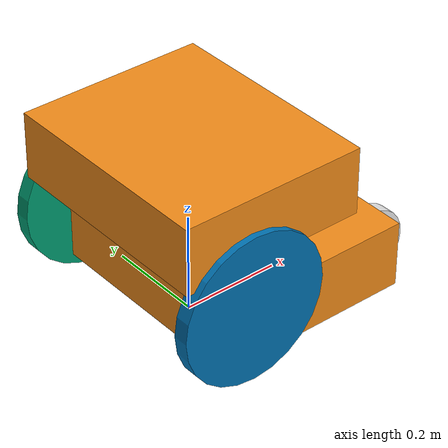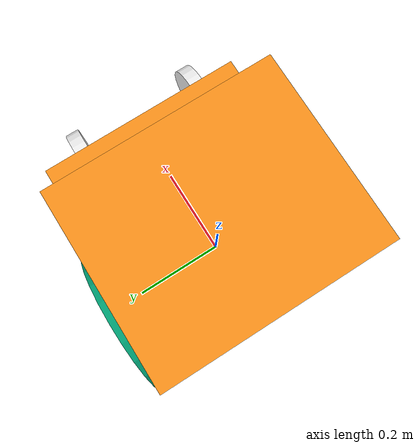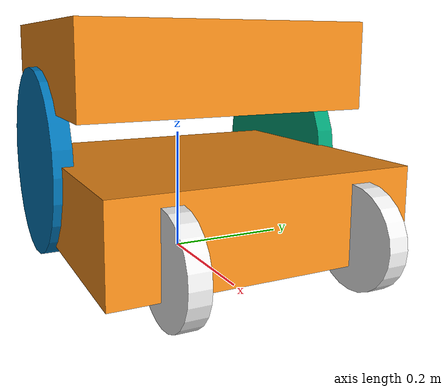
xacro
<?xml version="1.0"?>
<!-- Revolute-Revolute Manipulator -->
<robot name="orne_x" xmlns:xacro="http://ros.org/wiki/xacro">
  <!-- Constants for robot dimensions -->
  <xacro:property name="PI" value="3.1415926535897931"/>

  <!-- Import Rviz colors -->
  <xacro:include filename="$(find icart_mini_description)/urdf/materials.xacro" />
  <xacro:include filename="$(find orne_description)/urdf/orne_x.gazebo"/>

 <!-- Base footprint-->
 <link name="base_footprint"/>

  <joint name="base_joint" type="fixed">
    <parent link="base_footprint"/>
    <child link="base_link"/>
    <origin xyz="0.0 0.0 0.010" rpy="0 0 0"/>
  </joint>

  <!-- Base Link -->
  <link name="base_link">
    <collision>
      <origin xyz="0 0 0.1" rpy="0 0 0"/>
      <geometry>
	       <box size=".40 .45 .134"/>
      </geometry>
    </collision>

    <visual>
      <origin xyz="0.1 0 0.1" rpy="0 0 0"/>
      <geometry>
	       <box size=".40 .45 .134"/>
      </geometry>
      <material name="orange"/>
    </visual>

    <collision>
      <origin xyz="0.005 0 0.305" rpy="0 0 0"/>
      <geometry>
	       <box size=".376 .45 .134"/>
      </geometry>
    </collision>

    <visual>
      <origin xyz="0.005 0 0.305" rpy="0 0 0"/>
      <geometry>
	       <box size=".376 .45 .134"/>
      </geometry>
      <material name="orange"/>
    </visual>

    <collision name="collision">
      <origin xyz="0.301 -0.141 0.075" rpy="0 1.5707 1.5707"/>
      <geometry>
        <cylinder  length="0.03" radius="0.075"/>
      </geometry>
    </collision>
    <visual name="visual">
      <origin xyz="0.301 -0.141 0.075" rpy="0 1.5707 1.5707"/>
      <geometry>
        <cylinder  length="0.03" radius="0.075"/>
      </geometry>
    </visual>

    <collision name="collision">
      <origin xyz="0.301 0.141 0.075" rpy="0 1.5707 1.5707"/>
      <geometry>
        <cylinder  length="0.03" radius="0.075"/>
      </geometry>
    </collision>
    <visual name="visual">
      <origin xyz="0.301 0.141 0.075" rpy="0 1.5707 1.5707"/>
      <geometry>
        <cylinder  length="0.03" radius="0.075"/>
      </geometry>
    </visual>

    <inertial>
       <mass value="15" />
       <origin xyz="0 0 0" rpy="0 0 0"/>
       <inertia ixx="1" ixy="0" ixz="0" iyy="1" iyz="0" izz="1" />
    </inertial>
  </link>

  <link name="visual_left_wheel">
    <visual name="visual">
      <origin xyz="0 0.0 0" rpy="0 1.5707 1.5707"/>
      <geometry>
        <cylinder  length="0.03" radius="0.151"/>
      </geometry>
    </visual>
  </link>

  <joint type="fixed" name="visual_left_wheel_hinge">
    <origin xyz="-0.045 0.233 0.1518" rpy="0 0 0"/>
    <child link="visual_left_wheel">visual_left_wheel</child>
    <parent link="base_link">base_link</parent>
    <axis xyz="0 1 0"/>
  </joint>

  <link name="left_wheel">
    <collision name="collision">
      <origin xyz="0 0.0 0" rpy="0 1.5707 1.5707"/>
      <geometry>
         <cylinder  length="0.03" radius="0.151"/>
      </geometry>
    </collision>
    <inertial>
      <mass value="1" />
      <origin xyz="0 0.0 0"/>
      <inertia ixx="0.1" ixy="0" ixz="0" iyy="0.1" iyz="0" izz="0.1" />
    </inertial>
  </link>

  <joint type="revolute" name="left_wheel_hinge">
    <origin xyz="-0.045 0.223 0.1518" rpy="0 0 0"/>
    <child link="left_wheel">left_wheel</child>
    <parent link="base_link">base_link</parent>
    <axis xyz="0 1 0"/>
    <limit effort="100" velocity="100.0"  lower="-5000" upper="5000" />
  </joint>

  <link name="visual_right_wheel">
    <visual name="visual">
      <origin xyz="0 0.0 0" rpy="0 1.5707 1.5707"/>
      <geometry>
        <cylinder  length="0.03" radius="0.151"/>
      </geometry>
    </visual>
  </link>

  <joint type="fixed" name="visual_right_wheel_hinge">
    <origin xyz="-0.045 -0.223 0.1518" rpy="0 0 0"/>
    <child link="visual_right_wheel">visual_right_wheel</child>
    <parent link="base_link">base_link</parent>
    <axis xyz="0 1 0"/>
  </joint>

  <link name="right_wheel">
    <collision name="collision">
      <origin xyz="0 0.0 0" rpy="0 1.5707 1.5707"/>
      <geometry>
         <cylinder  length="0.03" radius="0.151"/>
      </geometry>
    </collision>
    <inertial>
      <mass value="1" />
      <origin xyz="0 0.0 0"/>
      <inertia ixx="0.1" ixy="0" ixz="0" iyy="0.1" iyz="0" izz="0.1" />
    </inertial>
  </link>

  <joint type="revolute" name="right_wheel_hinge">
    <origin xyz="-0.045 -0.223 0.1518" rpy="0 0 0"/>
    <child link="right_wheel">right_wheel</child>
    <parent link="base_link">base_link</parent>
    <axis xyz="0 1 0"/>
    <limit effort="100" velocity="100.0"  lower="-5000" upper="5000" />
  </joint>

  <transmission name="tran1">
    <type>transmission_interface/SimpleTransmission</type>
    <joint name="left_wheel_hinge">
      <hardwareInterface>VelocityJointInterface</hardwareInterface>
    </joint>
  <actuator name="left_motor">
      <hardwareInterface>VelocityJointInterface</hardwareInterface>
      <mechanicalReduction>1</mechanicalReduction>
    </actuator>
  </transmission>

  <transmission name="tran2">
    <type>transmission_interface/SimpleTransmission</type>
    <joint name="right_wheel_hinge">
      <hardwareInterface>VelocityJointInterface</hardwareInterface>
    </joint>
  <actuator name="right_motor">
      <hardwareInterface>VelocityJointInterface</hardwareInterface>
      <mechanicalReduction>1</mechanicalReduction>
    </actuator>
  </transmission>
</robot>
